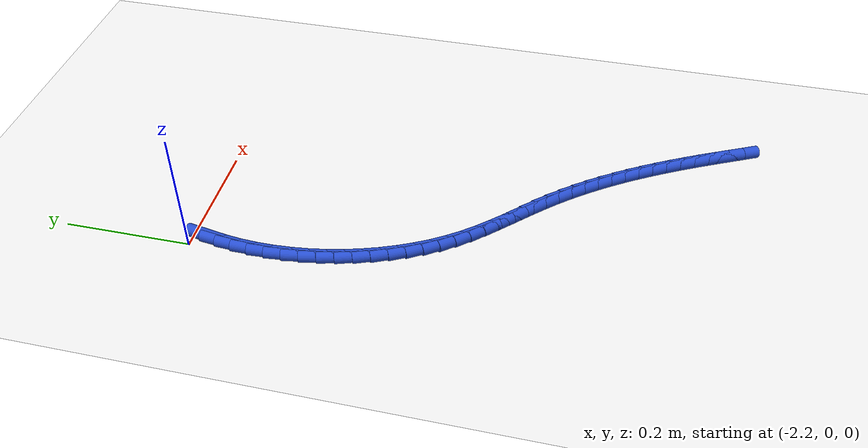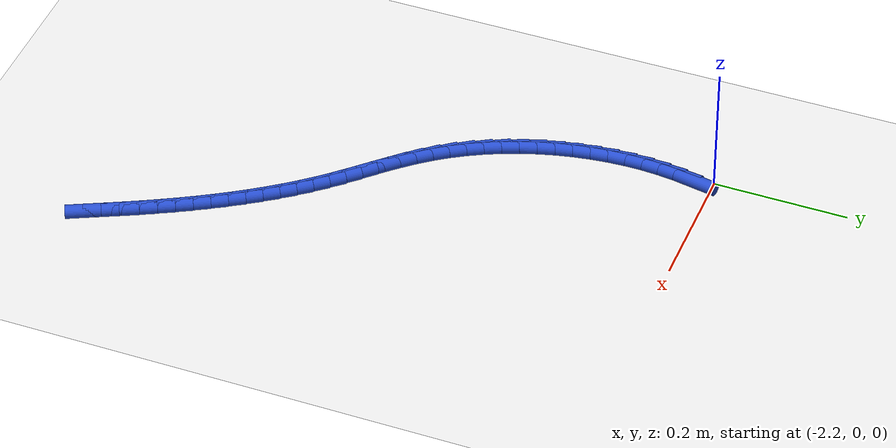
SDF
<sdf version="1.6">
 <world name="default">
  <model name="ground_plane">
   <static>1</static>
   <link name="link">
    <collision name="collision">
     <geometry><plane><normal>0 0 1</normal><size>100 100</size></plane></geometry>
     <surface><friction><ode><mu>100</mu><mu2>50</mu2></ode></friction></surface>
    </collision>
    <visual name="visual">
     <cast_shadows>0</cast_shadows>
     <geometry><plane><normal>0 0 1</normal><size>100 100</size></plane></geometry>
     <material>
      <script><uri>file://media/materials/scripts/gazebo.material</uri><name>Gazebo/WhiteGlow</name></script>
     </material>
    </visual>
   </link>
  </model>
  <model name="line">
   <link name="link_138">
    <pose>-2.18526716045617 -0.0306147831667531 0.01 0 1.57 1.3905454950056004</pose>
    <collision name="collision">
     <geometry><cylinder><radius>0.01</radius><length>0.08</length></cylinder></geometry>
    </collision>
    <visual name="visual">
     <material>
      <script><name>Gazebo/Blue</name><uri>file://media/materials/scripts/gazebo.material</uri></script>
     </material>
     <geometry><cylinder><radius>0.01</radius><length>0.08</length></cylinder></geometry>
    </visual>
   </link>
   <link name="link_139">
    <pose>-2.1898010549090943 -0.05549502974424632 0.01 0 1.57 1.452959101941809</pose>
    <collision name="collision">
     <geometry><cylinder><radius>0.01</radius><length>0.08</length></cylinder></geometry>
    </collision>
    <visual name="visual">
     <material>
      <script><name>Gazebo/Blue</name><uri>file://media/materials/scripts/gazebo.material</uri></script>
     </material>
     <geometry><cylinder><radius>0.01</radius><length>0.08</length></cylinder></geometry>
    </visual>
   </link>
   <link name="link_140">
    <pose>-2.1928005048907537 -0.0808312853368617 0.01 0 1.57 1.512804284964272</pose>
    <collision name="collision">
     <geometry><cylinder><radius>0.01</radius><length>0.08</length></cylinder></geometry>
    </collision>
    <visual name="visual">
     <material>
      <script><name>Gazebo/Blue</name><uri>file://media/materials/scripts/gazebo.material</uri></script>
     </material>
     <geometry><cylinder><radius>0.01</radius><length>0.08</length></cylinder></geometry>
    </visual>
   </link>
   <link name="link_141">
    <pose>-2.194291188771336 -0.10650743613172567 0.01 0 1.57 1.570503038402356</pose>
    <collision name="collision">
     <geometry><cylinder><radius>0.01</radius><length>0.08</length></cylinder></geometry>
    </collision>
    <visual name="visual">
     <material>
      <script><name>Gazebo/Blue</name><uri>file://media/materials/scripts/gazebo.material</uri></script>
     </material>
     <geometry><cylinder><radius>0.01</radius><length>0.08</length></cylinder></geometry>
    </visual>
   </link>
   <link name="link_142">
    <pose>-2.194298784921031 -0.1324073683159658 0.01 0 1.57 -1.515108212146877</pose>
    <collision name="collision">
     <geometry><cylinder><radius>0.01</radius><length>0.08</length></cylinder></geometry>
    </collision>
    <visual name="visual">
     <material>
      <script><name>Gazebo/Blue</name><uri>file://media/materials/scripts/gazebo.material</uri></script>
     </material>
     <geometry><cylinder><radius>0.01</radius><length>0.08</length></cylinder></geometry>
    </visual>
   </link>
   <link name="link_143">
    <pose>-2.192848971710028 -0.15841496807670935 0.01 0 1.57 -1.4604145927133334</pose>
    <collision name="collision">
     <geometry><cylinder><radius>0.01</radius><length>0.08</length></cylinder></geometry>
    </collision>
    <visual name="visual">
     <material>
      <script><name>Gazebo/Blue</name><uri>file://media/materials/scripts/gazebo.material</uri></script>
     </material>
     <geometry><cylinder><radius>0.01</radius><length>0.08</length></cylinder></geometry>
    </visual>
   </link>
   <link name="link_144">
    <pose>-2.1899674275085146 -0.18441412160108336 0.01 0 1.57 -1.4065816911486158</pose>
    <collision name="collision">
     <geometry><cylinder><radius>0.01</radius><length>0.08</length></cylinder></geometry>
    </collision>
    <visual name="visual">
     <material>
      <script><name>Gazebo/Blue</name><uri>file://media/materials/scripts/gazebo.material</uri></script>
     </material>
     <geometry><cylinder><radius>0.01</radius><length>0.08</length></cylinder></geometry>
    </visual>
   </link>
   <link name="link_145">
    <pose>-2.1856798306866794 -0.21028871507621508 0.01 0 1.57 -1.353185463028507</pose>
    <collision name="collision">
     <geometry><cylinder><radius>0.01</radius><length>0.08</length></cylinder></geometry>
    </collision>
    <visual name="visual">
     <material>
      <script><name>Gazebo/Blue</name><uri>file://media/materials/scripts/gazebo.material</uri></script>
     </material>
     <geometry><cylinder><radius>0.01</radius><length>0.08</length></cylinder></geometry>
    </visual>
   </link>
   <link name="link_146">
    <pose>-2.1800118596147118 -0.2359226346892325 0.01 0 1.57 -1.299803882972934</pose>
    <collision name="collision">
     <geometry><cylinder><radius>0.01</radius><length>0.08</length></cylinder></geometry>
    </collision>
    <visual name="visual">
     <material>
      <script><name>Gazebo/Blue</name><uri>file://media/materials/scripts/gazebo.material</uri></script>
     </material>
     <geometry><cylinder><radius>0.01</radius><length>0.08</length></cylinder></geometry>
    </visual>
   </link>
   <link name="link_147">
    <pose>-2.172989192662801 -0.2611997666272613 0.01 0 1.57 -1.246015215295702</pose>
    <collision name="collision">
     <geometry><cylinder><radius>0.01</radius><length>0.08</length></cylinder></geometry>
    </collision>
    <visual name="visual">
     <material>
      <script><name>Gazebo/Blue</name><uri>file://media/materials/scripts/gazebo.material</uri></script>
     </material>
     <geometry><cylinder><radius>0.01</radius><length>0.08</length></cylinder></geometry>
    </visual>
   </link>
   <link name="link_148">
    <pose>-2.1646375082011344 -0.28600399707742924 0.01 0 1.57 -1.1913962714903878</pose>
    <collision name="collision">
     <geometry><cylinder><radius>0.01</radius><length>0.08</length></cylinder></geometry>
    </collision>
    <visual name="visual">
     <material>
      <script><name>Gazebo/Blue</name><uri>file://media/materials/scripts/gazebo.material</uri></script>
     </material>
     <geometry><cylinder><radius>0.01</radius><length>0.08</length></cylinder></geometry>
    </visual>
   </link>
   <link name="link_149">
    <pose>-2.1549824845999015 -0.3102192122268637 0.01 0 1.57 -1.1355213647264155</pose>
    <collision name="collision">
     <geometry><cylinder><radius>0.01</radius><length>0.08</length></cylinder></geometry>
    </collision>
    <visual name="visual">
     <material>
      <script><name>Gazebo/Blue</name><uri>file://media/materials/scripts/gazebo.material</uri></script>
     </material>
     <geometry><cylinder><radius>0.01</radius><length>0.08</length></cylinder></geometry>
    </visual>
   </link>
   <link name="link_150">
    <pose>-2.1440498002292907 -0.33372929826269176 0.01 0 1.57 -1.0779627454193739</pose>
    <collision name="collision">
     <geometry><cylinder><radius>0.01</radius><length>0.08</length></cylinder></geometry>
    </collision>
    <visual name="visual">
     <material>
      <script><name>Gazebo/Blue</name><uri>file://media/materials/scripts/gazebo.material</uri></script>
     </material>
     <geometry><cylinder><radius>0.01</radius><length>0.08</length></cylinder></geometry>
    </visual>
   </link>
   <link name="link_151">
    <pose>-2.131865133459492 -0.3564181413720408 0.01 0 1.57 -1.0182934444221525</pose>
    <collision name="collision">
     <geometry><cylinder><radius>0.01</radius><length>0.08</length></cylinder></geometry>
    </collision>
    <visual name="visual">
     <material>
      <script><name>Gazebo/Blue</name><uri>file://media/materials/scripts/gazebo.material</uri></script>
     </material>
     <geometry><cylinder><radius>0.01</radius><length>0.08</length></cylinder></geometry>
    </visual>
   </link>
   <link name="link_152">
    <pose>-2.1184541626606923 -0.37816962774203766 0.01 0 1.57 -0.9561206264709315</pose>
    <collision name="collision">
     <geometry><cylinder><radius>0.01</radius><length>0.08</length></cylinder></geometry>
    </collision>
    <visual name="visual">
     <material>
      <script><name>Gazebo/Blue</name><uri>file://media/materials/scripts/gazebo.material</uri></script>
     </material>
     <geometry><cylinder><radius>0.01</radius><length>0.08</length></cylinder></geometry>
    </visual>
   </link>
   <link name="link_153">
    <pose>-2.103842982529069 -0.3988682395041647 0.01 0 1.57 -0.8959884223376461</pose>
    <collision name="collision">
     <geometry><cylinder><radius>0.01</radius><length>0.08</length></cylinder></geometry>
    </collision>
    <visual name="visual">
     <material>
      <script><name>Gazebo/Blue</name><uri>file://media/materials/scripts/gazebo.material</uri></script>
     </material>
     <geometry><cylinder><radius>0.01</radius><length>0.08</length></cylinder></geometry>
    </visual>
   </link>
   <link name="link_154">
    <pose>-2.0881317911305803 -0.4185045330832019 0.01 0 1.57 -0.8486850934327924</pose>
    <collision name="collision">
     <geometry><cylinder><radius>0.01</radius><length>0.08</length></cylinder></geometry>
    </collision>
    <visual name="visual">
     <material>
      <script><name>Gazebo/Blue</name><uri>file://media/materials/scripts/gazebo.material</uri></script>
     </material>
     <geometry><cylinder><radius>0.01</radius><length>0.08</length></cylinder></geometry>
    </visual>
   </link>
   <link name="link_155">
    <pose>-2.0715796564354942 -0.4372964771373513 0.01 0 1.57 -0.8160177445169895</pose>
    <collision name="collision">
     <geometry><cylinder><radius>0.01</radius><length>0.08</length></cylinder></geometry>
    </collision>
    <visual name="visual">
     <material>
      <script><name>Gazebo/Blue</name><uri>file://media/materials/scripts/gazebo.material</uri></script>
     </material>
     <geometry><cylinder><radius>0.01</radius><length>0.08</length></cylinder></geometry>
    </visual>
   </link>
   <link name="link_156">
    <pose>-2.054466175087366 -0.4554914258239806 0.01 0 1.57 -0.7981690138201702</pose>
    <collision name="collision">
     <geometry><cylinder><radius>0.01</radius><length>0.08</length></cylinder></geometry>
    </collision>
    <visual name="visual">
     <material>
      <script><name>Gazebo/Blue</name><uri>file://media/materials/scripts/gazebo.material</uri></script>
     </material>
     <geometry><cylinder><radius>0.01</radius><length>0.08</length></cylinder></geometry>
    </visual>
   </link>
   <link name="link_157">
    <pose>-2.0370709437297507 -0.4733367333004596 0.01 0 1.57 -0.7952336946981526</pose>
    <collision name="collision">
     <geometry><cylinder><radius>0.01</radius><length>0.08</length></cylinder></geometry>
    </collision>
    <visual name="visual">
     <material>
      <script><name>Gazebo/Blue</name><uri>file://media/materials/scripts/gazebo.material</uri></script>
     </material>
     <geometry><cylinder><radius>0.01</radius><length>0.08</length></cylinder></geometry>
    </visual>
   </link>
   <link name="link_158">
    <pose>-2.019673559006202 -0.491079753724157 0.01 0 1.57 -0.8073366405266771</pose>
    <collision name="collision">
     <geometry><cylinder><radius>0.01</radius><length>0.08</length></cylinder></geometry>
    </collision>
    <visual name="visual">
     <material>
      <script><name>Gazebo/Blue</name><uri>file://media/materials/scripts/gazebo.material</uri></script>
     </material>
     <geometry><cylinder><radius>0.01</radius><length>0.08</length></cylinder></geometry>
    </visual>
   </link>
   <link name="link_159">
    <pose>-2.0025536175602734 -0.5089678412524417 0.01 0 1.57 -0.8342633002759376</pose>
    <collision name="collision">
     <geometry><cylinder><radius>0.01</radius><length>0.08</length></cylinder></geometry>
    </collision>
    <visual name="visual">
     <material>
      <script><name>Gazebo/Blue</name><uri>file://media/materials/scripts/gazebo.material</uri></script>
     </material>
     <geometry><cylinder><radius>0.01</radius><length>0.08</length></cylinder></geometry>
    </visual>
   </link>
   <link name="link_160">
    <pose>-1.9859832884325872 -0.5272422182392623 0.01 0 1.57 -0.86783087914756</pose>
    <collision name="collision">
     <geometry><cylinder><radius>0.01</radius><length>0.08</length></cylinder></geometry>
    </collision>
    <visual name="visual">
     <material>
      <script><name>Gazebo/Blue</name><uri>file://media/materials/scripts/gazebo.material</uri></script>
     </material>
     <geometry><cylinder><radius>0.01</radius><length>0.08</length></cylinder></geometry>
    </visual>
   </link>
   <link name="link_161">
    <pose>-1.97007684339856 -0.5460137561030656 0.01 0 1.57 -0.9000135018040524</pose>
    <collision name="collision">
     <geometry><cylinder><radius>0.01</radius><length>0.08</length></cylinder></geometry>
    </collision>
    <visual name="visual">
     <material>
      <script><name>Gazebo/Blue</name><uri>file://media/materials/scripts/gazebo.material</uri></script>
     </material>
     <geometry><cylinder><radius>0.01</radius><length>0.08</length></cylinder></geometry>
    </visual>
   </link>
   <link name="link_162">
    <pose>-1.954797526663865 -0.5652686465537742 0.01 0 1.57 -0.9303719574450093</pose>
    <collision name="collision">
     <geometry><cylinder><radius>0.01</radius><length>0.08</length></cylinder></geometry>
    </collision>
    <visual name="visual">
     <material>
      <script><name>Gazebo/Blue</name><uri>file://media/materials/scripts/gazebo.material</uri></script>
     </material>
     <geometry><cylinder><radius>0.01</radius><length>0.08</length></cylinder></geometry>
    </visual>
   </link>
   <link name="link_163">
    <pose>-1.9401025296226144 -0.5849880844468772 0.01 0 1.57 -0.9588114165755186</pose>
    <collision name="collision">
     <geometry><cylinder><radius>0.01</radius><length>0.08</length></cylinder></geometry>
    </collision>
    <visual name="visual">
     <material>
      <script><name>Gazebo/Blue</name><uri>file://media/materials/scripts/gazebo.material</uri></script>
     </material>
     <geometry><cylinder><radius>0.01</radius><length>0.08</length></cylinder></geometry>
    </visual>
   </link>
   <link name="link_164">
    <pose>-1.9259490436689188 -0.6051532646378643 0.01 0 1.57 -0.9852619452585266</pose>
    <collision name="collision">
     <geometry><cylinder><radius>0.01</radius><length>0.08</length></cylinder></geometry>
    </collision>
    <visual name="visual">
     <material>
      <script><name>Gazebo/Blue</name><uri>file://media/materials/scripts/gazebo.material</uri></script>
     </material>
     <geometry><cylinder><radius>0.01</radius><length>0.08</length></cylinder></geometry>
    </visual>
   </link>
   <link name="link_165">
    <pose>-1.912294260196889 -0.6257453819822228 0.01 0 1.57 -1.0096761664872866</pose>
    <collision name="collision">
     <geometry><cylinder><radius>0.01</radius><length>0.08</length></cylinder></geometry>
    </collision>
    <visual name="visual">
     <material>
      <script><name>Gazebo/Blue</name><uri>file://media/materials/scripts/gazebo.material</uri></script>
     </material>
     <geometry><cylinder><radius>0.01</radius><length>0.08</length></cylinder></geometry>
    </visual>
   </link>
   <link name="link_166">
    <pose>-1.8990953706006355 -0.6467456313354426 0.01 0 1.57 -1.0320265035368739</pose>
    <collision name="collision">
     <geometry><cylinder><radius>0.01</radius><length>0.08</length></cylinder></geometry>
    </collision>
    <visual name="visual">
     <material>
      <script><name>Gazebo/Blue</name><uri>file://media/materials/scripts/gazebo.material</uri></script>
     </material>
     <geometry><cylinder><radius>0.01</radius><length>0.08</length></cylinder></geometry>
    </visual>
   </link>
   <link name="link_167">
    <pose>-1.886309566274269 -0.6681352075530116 0.01 0 1.57 -1.0523022388439551</pose>
    <collision name="collision">
     <geometry><cylinder><radius>0.01</radius><length>0.08</length></cylinder></geometry>
    </collision>
    <visual name="visual">
     <material>
      <script><name>Gazebo/Blue</name><uri>file://media/materials/scripts/gazebo.material</uri></script>
     </material>
     <geometry><cylinder><radius>0.01</radius><length>0.08</length></cylinder></geometry>
    </visual>
   </link>
   <link name="link_168">
    <pose>-1.8738940386119 -0.6898953054904193 0.01 0 1.57 -1.070506578546959</pose>
    <collision name="collision">
     <geometry><cylinder><radius>0.01</radius><length>0.08</length></cylinder></geometry>
    </collision>
    <visual name="visual">
     <material>
      <script><name>Gazebo/Blue</name><uri>file://media/materials/scripts/gazebo.material</uri></script>
     </material>
     <geometry><cylinder><radius>0.01</radius><length>0.08</length></cylinder></geometry>
    </visual>
   </link>
   <link name="link_169">
    <pose>-1.8618059790076396 -0.7120071200031542 0.01 0 1.57 -1.0866538651156379</pose>
    <collision name="collision">
     <geometry><cylinder><radius>0.01</radius><length>0.08</length></cylinder></geometry>
    </collision>
    <visual name="visual">
     <material>
      <script><name>Gazebo/Blue</name><uri>file://media/materials/scripts/gazebo.material</uri></script>
     </material>
     <geometry><cylinder><radius>0.01</radius><length>0.08</length></cylinder></geometry>
    </visual>
   </link>
   <link name="link_170">
    <pose>-1.850002578855598 -0.7344518459467052 0.01 0 1.57 -1.10076703499746</pose>
    <collision name="collision">
     <geometry><cylinder><radius>0.01</radius><length>0.08</length></cylinder></geometry>
    </collision>
    <visual name="visual">
     <material>
      <script><name>Gazebo/Blue</name><uri>file://media/materials/scripts/gazebo.material</uri></script>
     </material>
     <geometry><cylinder><radius>0.01</radius><length>0.08</length></cylinder></geometry>
    </visual>
   </link>
   <link name="link_171">
    <pose>-1.838441029549886 -0.7572106781765613 0.01 0 1.57 -1.1128753788690386</pose>
    <collision name="collision">
     <geometry><cylinder><radius>0.01</radius><length>0.08</length></cylinder></geometry>
    </collision>
    <visual name="visual">
     <material>
      <script><name>Gazebo/Blue</name><uri>file://media/materials/scripts/gazebo.material</uri></script>
     </material>
     <geometry><cylinder><radius>0.01</radius><length>0.08</length></cylinder></geometry>
    </visual>
   </link>
   <link name="link_172">
    <pose>-1.827078522484615 -0.7802648115482109 0.01 0 1.57 -1.122948291768686</pose>
    <collision name="collision">
     <geometry><cylinder><radius>0.01</radius><length>0.08</length></cylinder></geometry>
    </collision>
    <visual name="visual">
     <material>
      <script><name>Gazebo/Blue</name><uri>file://media/materials/scripts/gazebo.material</uri></script>
     </material>
     <geometry><cylinder><radius>0.01</radius><length>0.08</length></cylinder></geometry>
    </visual>
   </link>
   <link name="link_173">
    <pose>-1.8158711808310675 -0.8035938189152343 0.01 0 1.57 -1.1202518775546015</pose>
    <collision name="collision">
     <geometry><cylinder><radius>0.01</radius><length>0.08</length></cylinder></geometry>
    </collision>
    <visual name="visual">
     <material>
      <script><name>Gazebo/Blue</name><uri>file://media/materials/scripts/gazebo.material</uri></script>
     </material>
     <geometry><cylinder><radius>0.01</radius><length>0.08</length></cylinder></geometry>
    </visual>
   </link>
  </model>
 </world>
</sdf>
